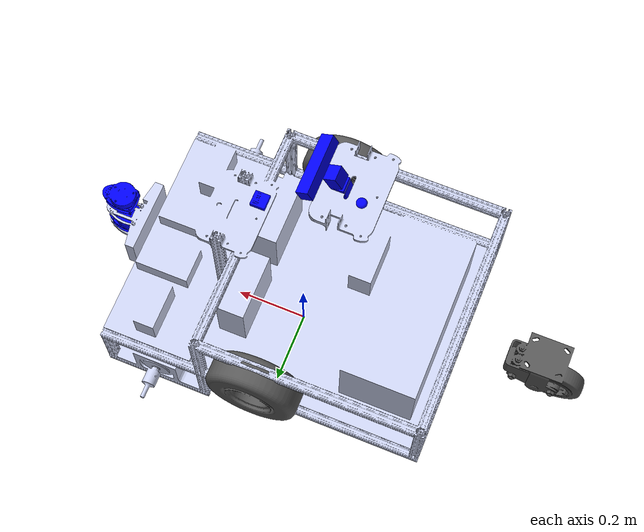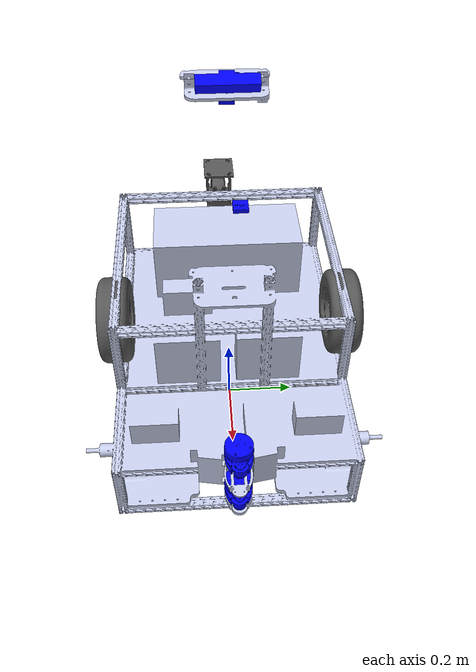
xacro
<?xml version="1.0" encoding="utf-8"?>
<robot name="espresso" xmlns:xacro="http://ros.org/wiki/xacro">

	<link name="base_link" />

	<!-- Includes -->
	<xacro:include filename="$(find description)/rover_model/urdf/plugins.gazebo.xacro"/>

	<!-- stand_link: origin for anything on the stand; located in the middle, on the top of the stand plate -->
	<xacro:include filename="$(find description)/rover_model/urdf/stand_link.urdf.xacro"/>

	<!-- wheels: associated to wheels that can be moved by a motor and the caster wheel -->
    <xacro:include filename="$(find description)/rover_model/urdf/wheels.urdf.xacro"/>

	<link name="chassis_link">
		<inertial>
			<origin xyz="-0.040859 0.00033673 -0.054592" rpy="0 0 0" />
			<mass value="40.135" />
			<inertia
				ixx="0.58726"
				ixy="1.3916E-05"
				ixz="8.6833E-05"
				iyy="0.27783"
				iyz="1.0234E-06"
				izz="0.67281" />
		</inertial>

		<visual>
			<origin xyz="0 0 0" rpy="0 0 0" />
			<geometry>
				<mesh filename="package://description/rover_model/meshes/chassis_link.STL" />
			</geometry>
			<material name="">
				<color rgba="0.79216 0.81961 0.93333 1" />
			</material>
		</visual>

		<collision>
			<origin xyz="0 0 0" rpy="0 0 0" />
			<geometry>
				<mesh filename="package://description/rover_model/meshes/chassis_link.STL" />
			</geometry>
		</collision>
	</link>

	<joint name="chassis_joint" type="fixed">
		<origin xyz="0 0 0.34041" rpy="0 0 0" />
		<parent link="base_link" />
		<child link="chassis_link" />
		<axis xyz="0 0 0" />
	</joint>

	<gazebo reference="chassis_link">
		<material>Gazebo/Grey</material>
	</gazebo>

	<!-- Upper LIDAR -->
	<link name="top_lidar_link">
		<inertial>
			<origin xyz="0.012061 -0.00053309 -0.018931" rpy="0 0 0" />
			<mass value="0.073082" />
			<inertia
				ixx="1.9579E-05"
				ixy="-1.0452E-07"
				ixz="-4.2823E-07"
				iyy="2.4126E-05"
				iyz="9.3469E-09"
				izz="4.1417E-05" />
		</inertial>

		<visual>
			<origin xyz="0 0 0" rpy="0 0 0" />
			<geometry>
				<mesh filename="package://description/rover_model/meshes/lidar_link.STL" />
			</geometry>
			<material name="">
				<color rgba="0 0 1 1" />
			</material>
		</visual>

		<collision>
			<origin xyz="0 0 0" rpy="0 0 0" />
			<geometry>
				<mesh filename="package://description/rover_model/meshes/lidar_link.STL" />
			</geometry>
		</collision>
	</link>

	<joint name="top_lidar_joint" type="fixed">
		<origin xyz="0.52049 -0.005698 ${distance_to_second_lidar - 0.069334}" rpy="0 0 0" />
		<!-- before z =  0.0056661 -->
		<parent link="chassis_link" />
		<child link="top_lidar_link" />
		<axis xyz="0 0 0" />
	</joint>

	<gazebo reference="top_lidar_link">
		<material>Gazebo/Blue</material>
	</gazebo>

	<!-- Lower LIDAR -->
	<link name="bottom_lidar_link">
		<inertial>
			<origin xyz="-0.044335 2.8732E-05 -0.021084" rpy="0 0 0" />
			<mass value="0.46918" />
			<inertia
				ixx="0.0018061"
				ixy="-1.363E-06"
				ixz="7.5472E-05"
				iyy="0.0004731"
				iyz="8.5341E-07"
				izz="0.001728" />
		</inertial>

		<visual>
			<origin xyz="0 0 0" rpy="0 0 0" />
			<geometry>
				<mesh filename="package://description/rover_model/meshes/lidar_link.STL" />
			</geometry>
			<material name="">
				<color rgba="0 0 1 1" />
			</material>
		</visual>

		<collision>
			<origin xyz="0 0 0" rpy="0 0 0" />
			<geometry>
				<mesh filename="package://description/rover_model/meshes/lidar_link.STL" />
			</geometry>
		</collision>
	</link>

	<joint name="bottom_lidar_joint" type="fixed">
		<origin xyz="0.52049 -0.005698 -0.069334" rpy="0 0 0" />
		<parent link="chassis_link" />
		<child link="bottom_lidar_link" />
		<axis xyz="0 0 0" />
	</joint>

	<gazebo reference="bottom_lidar_link">
		<material>Gazebo/Blue</material>
	</gazebo>

</robot>

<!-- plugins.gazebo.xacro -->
<robot name="plugins" xmlns:xacro="http://ros.org/wiki/xacro">

    <!-- Includes -->
    <xacro:include filename="$(find description)/rover_model/urdf/constants.xacro"/>

    <!-- Differential Drive Control Support -->
    <gazebo>
        <plugin name="espresso_drive_controller" filename="libgazebo_ros_diff_drive.so">
            <updateRate>${diff_drive_update_rate}</updateRate>
            <leftJoint>${wheel_left_joint}</leftJoint>
            <rightJoint>${wheel_right_joint}</rightJoint>
            <wheelSeparation>${wheels_separation}</wheelSeparation>
            <wheelDiameter>${wheel_diameter}</wheelDiameter>
            <wheelAcceleration>${wheel_acceleration}</wheelAcceleration>
            <wheelTorque>${wheel_torque}</wheelTorque>
            <commandTopic>${diff_drive_commandTopic}</commandTopic>
            <odometryTopic>${diff_drive_odometryTopic}</odometryTopic>
            <odometryFrame>${diff_drive_odometryFrame}</odometryFrame>
            <robotBaseFrame>${diff_drive_robotBaseFrame}</robotBaseFrame>
            <odometrySource>${diff_drive_odometrySource}</odometrySource>
            <publishWheelTF>${diff_drive_publishWheelTF}</publishWheelTF>
            <publishOdomTF>${diff_drive_publishOdomTF}</publishOdomTF>
            <publishTf>${diff_drive_publishTf}</publishTf>
            <publishWheelJointState>${diff_drive_publishWheelJointState}</publishWheelJointState>
            <legacyMode>${diff_drive_legacymode}</legacyMode>
            <rosDebugLevel>${diff_drive_rosDebugLevel}</rosDebugLevel>
        </plugin>
    </gazebo>

    <!-- Lets all the transmission tags be read -->
    <gazebo>
        <plugin name="gazebo_ros_control" filename="libgazebo_ros_control.so"/>
    </gazebo>

    <!-- LIDAR -->
    <gazebo reference="bottom_lidar_link">
        <!-- Make sure your sensor NAMES are unique -->
        <sensor type="ray" name="rplidar_sensor_1">
            <pose>0 0 0 0 0 0</pose>
            <visualize>${laser_visualize}</visualize>
            <update_rate>${laser_update_rate}</update_rate>
            <ray>
                <scan>
                    <horizontal>
                        <samples>${laser_horizontal_samples}</samples>
                        <resolution>${laser_horizontal_resolution}</resolution>
                        <min_angle>${laser_horizontal_min_angle}</min_angle>
                        <max_angle>${laser_horizontal_max_angle}</max_angle>
                    </horizontal>
                </scan>
                <range>
                    <min>${laser_range_min}</min>
                    <max>${laser_range_max}</max>
                    <resolution>${laser_range_resolution}</resolution>
                </range>
                <noise>
                    <type>${laser_noise_type}</type>
                    <mean>${laser_noise_mean}</mean>
                    <stddev>${laser_noise_stddev}</stddev>
                </noise>
            </ray>
            <plugin name="gazebo_ros_rplidar_controller" filename="libgazebo_ros_laser.so">
                <topicName>${bottom_laser_topicName}</topicName>
                <frameName>${bottom_laser_frameName}</frameName>
            </plugin>
        </sensor>
    </gazebo>

    <!-- Second Upper LIDAR -->
    <gazebo reference="top_lidar_link">
        <!-- make sure your sensor NAMES are unique :'( -->
        <sensor type="ray" name="rplidar_sensor_2">
            <pose>0 0 0 0 0 0</pose>
            <visualize>${laser_visualize}</visualize>
            <update_rate>${laser_update_rate}</update_rate>
            <ray>
                <scan>
                    <horizontal>
                        <samples>${laser_horizontal_samples}</samples>
                        <resolution>${laser_horizontal_resolution}</resolution>
                        <min_angle>${laser_horizontal_min_angle}</min_angle>
                        <max_angle>${laser_horizontal_max_angle}</max_angle>
                    </horizontal>
                </scan>
                <range>
                    <min>${laser_range_min}</min>
                    <max>${laser_range_max}</max>
                    <resolution>${laser_range_resolution}</resolution>
                </range>
                <noise>
                    <type>${laser_noise_type}</type>
                    <mean>${laser_noise_mean}</mean>
                    <stddev>${laser_noise_stddev}</stddev>
                </noise>
            </ray>
            <plugin name="gazebo_ros_rplidar_controller" filename="libgazebo_ros_laser.so">
                <topicName>${top_laser_topicName}</topicName>
                <frameName>${top_laser_frameName}</frameName>
            </plugin>
        </sensor>
    </gazebo>

    <!-- GPS -->
    <gazebo>
        <plugin name="gps_controller" filename="libhector_gazebo_ros_gps.so">
            <updateRate>${gps_update_rate}</updateRate>
            <bodyName>${gps_frame}</bodyName>
            <frameId>${gps_frame}</frameId>

            <topicName>${gps_topic}</topicName>
            <velocityTopicName>${gps_vel_topic}</velocityTopicName>

            <referenceLatitude>${ref_lat}</referenceLatitude>
            <referenceLongitude>${ref_lon}</referenceLongitude>
            <referenceAltitude>${ref_alt}</referenceAltitude>

            <drift>${gps_drift}</drift>
            <velocityDrift>${gps_vel_drift}</velocityDrift>
            <!-- TODO: add Gaussian noise based off Garmin GPS -->
        </plugin>
    </gazebo>

    <!-- Gazebo multicamera plugin -->
    <gazebo reference="left_camera_link">
        <sensor type="multicamera" name="stereo_camera">
            <update_rate>${ZED_image_refresh}</update_rate>
            <camera name="left">
            <horizontal_fov>${ZED_image_hfov}</horizontal_fov>
            <image>
                <width>${ZED_image_width}</width>
                <height>${ZED_image_height}</height>
                <format>${ZED_image_format}</format>
            </image>
            <clip>
                <near>0.02</near>
                <far>300</far>
            </clip>
            </camera>
            <camera name="right">
            <pose>0 -${ZED_stereo_offset} 0 0 0 0</pose>
            <horizontal_fov>${ZED_image_hfov}</horizontal_fov>
            <image>
                <width>${ZED_image_width}</width>
                <height>${ZED_image_height}</height>
                <format>${ZED_image_format}</format>
            </image>
            <clip>
                <near>0.02</near>
                <far>300</far>
            </clip>
            </camera>
            <plugin name="stereo_camera_controller" filename="libgazebo_ros_multicamera.so">
                <cameraName>${ZED_name}</cameraName>
                <alwaysOn>${ZED_always_on}</alwaysOn>
                <updateRate>${ZED_update_rate}</updateRate>
                <imageTopicName>${ZED_image_topicName}</imageTopicName>
                <cameraInfoTopicName>${ZED_image_info_topicName}</cameraInfoTopicName>
                <depthImageTopicName>${ZED_depth_topicName}</depthImageTopicName>
                <depthImageInfoTopicName>${ZED_depth_info_topicName}</depthImageInfoTopicName>
                <pointCloudTopicName>${ZED_depth_points_topicName}</pointCloudTopicName>
                <frameName>${ZED_frameName}</frameName>
                <hackBaseline>${ZED_camera_length}</hackBaseline>
                <!-- TODO: Get distortion parameters from real camera -->
                <distortionK1>0.0</distortionK1>
                <distortionK2>0.0</distortionK2>
                <distortionK3>0.0</distortionK3>
                <distortionT1>0.0</distortionT1>
                <distortionT2>0.0</distortionT2>
            </plugin>
        </sensor>
    </gazebo>

    <!-- IMU -->
    <gazebo reference="imu_link">
        <gravity>true</gravity>
        <sensor name="imu_sensor" type="imu">
            <always_on>true</always_on>
            <update_rate>${imu_update_rate}</update_rate>
            <topic>__default_topic__</topic>
            <!-- TODO: add Drift based on Phidget IMU -->

            <plugin filename="libgazebo_ros_imu_sensor.so" name="imu_plugin">
                <topicName>${imu_topic}</topicName>
                <bodyName>${imu_frame}</bodyName>
                <frameName>${imu_frame}</frameName>
                <updateRateHZ>${imu_update_rate}</updateRateHZ>
                <gaussianNoise>0.0</gaussianNoise>  <!-- TODO: set Gaussian noise based on Phidget IMU -->
                <xyzOffset>0 0 0</xyzOffset>
                <rpyOffset>0 0 0</rpyOffset>
                <initialOrientationAsReference>false</initialOrientationAsReference>
            </plugin>

            <pose>0 0 0 0 0 0</pose>
        </sensor>
    </gazebo>

    <!-- Ground Truth Plugin-->
    <gazebo>
        <plugin name="p3d_base_controller" filename="libgazebo_ros_p3d.so">
        <alwaysOn>true</alwaysOn>
        <updateRate>50.0</updateRate>
        <bodyName>base_link</bodyName>
        <topicName>ground_truth/state</topicName>
        <gaussianNoise>0.01</gaussianNoise>
        <frameName>world</frameName>
        <xyzOffsets>0 0 0</xyzOffsets>
        <rpyOffsets>0 0 0</rpyOffsets>
        </plugin>
    </gazebo>

</robot>

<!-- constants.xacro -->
<robot name="timbot_constants" xmlns:xacro="http://ros.org/wiki/xacro">

    <!-- Drivebase -->

    <!-- Chassis -->
    <xacro:property name="chassis_to_base_link_dist" value="0.34041"/>
    <xacro:property name="chassis_to_stand_link_z_dist" value="0.26861"/>
    <xacro:property name="chassis_to_stand_link_x_dist" value="0.178"/>

    <xacro:property name="chassis_link_mass" value="36.95"/>

    <!-- Stand -->

    <!-- Casters -->

    <!-- Wheels -->
    <!-- TODO: Update acceleration and torque parameters when known -->
    <xacro:property name="wheel_left_joint" value="left_wheel_joint"/>
    <xacro:property name="wheel_right_joint" value="right_wheel_joint"/>

    <xacro:property name="wheels_separation" value="0.6744"/>
    <xacro:property name="wheel_diameter" value="0.25"/>

    <xacro:property name="wheel_acceleration" value="5.0"/>
    <xacro:property name="wheel_torque" value="60"/>

    <xacro:property name="wheel_mass" value="3.533"/>

    <!-- Gazebo Motor -->
    <xacro:property name="diff_drive_update_rate" value="30.0"/>

    <xacro:property name="diff_drive_commandTopic" value="/cmd_vel"/>
    <xacro:property name="diff_drive_odometryTopic" value="/wheel_odom"/>

    <xacro:property name="diff_drive_odometryFrame" value="odom"/>
    <xacro:property name="diff_drive_robotBaseFrame" value="base_link"/>

    <xacro:property name="diff_drive_odometrySource" value="encoder"/>

    <xacro:property name="diff_drive_publishWheelTF" value="false"/>
    <xacro:property name="diff_drive_publishOdomTF" value="false"/>
    <xacro:property name="diff_drive_publishTf" value="true"/>
    <xacro:property name="diff_drive_publishWheelJointState" value="true"/>

    <xacro:property name="diff_drive_legacymode" value="false"/>
    <xacro:property name="diff_drive_rosDebugLevel" value="na"/>

    <!--RPlidar A1-->

    <xacro:property name="laser_visualize" value="false"/>
    <xacro:property name="laser_update_rate" value="10"/>

    <xacro:property name="laser_horizontal_resolution" value="1"/>
    <xacro:property name="laser_horizontal_samples" value="1080"/>
    <xacro:property name="laser_field_of_view" value="360"/>
    <xacro:property name="laser_horizontal_min_angle" value="${-0.5*laser_field_of_view*pi/180}"/>
    <xacro:property name="laser_horizontal_max_angle" value="${0.5*laser_field_of_view*pi/180}"/>

    <xacro:property name="laser_range_min" value="0.15"/>
    <xacro:property name="laser_range_max" value="8"/>
    <xacro:property name="laser_resolution_angle" value="0.36"/>
    <xacro:property name="laser_range_resolution" value="${laser_resolution_angle*pi/180}"/>

    <xacro:property name="laser_noise_type" value="gaussian"/>
    <xacro:property name="laser_noise_mean" value="0.0"/>
    <xacro:property name="laser_noise_stddev" value="0.01/3"/>

    <xacro:property name="bottom_laser_topicName" value="/scan_lower"/>
    <xacro:property name="bottom_laser_frameName" value="bottom_lidar_link"/>
    <xacro:property name="top_laser_topicName" value="/scan_upper"/>
    <xacro:property name="top_laser_frameName" value="top_lidar_link"/>

    <xacro:property name="distance_to_second_lidar" value="0.14"/>

    <!-- ZED camera -->
    <!-- NOTE: approx as a rectangular prism -->
    <xacro:property name="ZED_camera_mass" value="0.1587573"/>
    <xacro:property name="ZED_camera_length" value="0.175"/>
    <xacro:property name="ZED_camera_width" value="0.03"/>

    <xacro:property name="ZED_stereo_offset" value="0.12"/>
    <xacro:property name="ZED_camera_pitch" value="${27 * pi/180}"/>
    <!-- ZED image height/width corresponds to image size for 60Hz refresh-->
    <xacro:property name="ZED_image_refresh" value="5"/>
    <xacro:property name="ZED_image_width" value="320"/>
    <xacro:property name="ZED_image_height" value="180"/>
    <xacro:property name="ZED_image_format" value="R8G8B8"/>
    <xacro:property name="ZED_image_hfov" value="${110 * pi/180}"/>

    <xacro:property name="ZED_name" value="zed_node"/>
    <xacro:property name="ZED_always_on" value="true"/>
    <xacro:property name="ZED_update_rate" value="5"/>
    <xacro:property name="ZED_image_topicName" value="/image_raw_color"/>
    <xacro:property name="ZED_image_info_topicName" value="/camera_info"/>
    <xacro:property name="ZED_depth_topicName" value="/depth/image_raw"/>
    <xacro:property name="ZED_depth_info_topicName" value="/depth/camera_info"/>
    <xacro:property name="ZED_depth_points_topicName" value="/depth/points"/>
    <xacro:property name="ZED_frameName" value="left_camera_link_optical"/>

    <!--ZED CAMERA JOINT PARAMETERS-->

    <xacro:property name="ZED_camera_to_top_plate_x" value="${(stand_width / 2.0)-0.01}"/>
    <xacro:property name="ZED_camera_to_top_plate_z" value="0.10098"/>

    <!-- Garmin GPS -->
    <!-- NOTE: approx. as a cylinder, Garmin itself is similar to a hockey puck -->
    <xacro:property name="gps_frame" value="gps_link"/>
    <xacro:property name="gps_topic" value="/gps/fix"/>
    <xacro:property name="gps_vel_topic" value="/gps/fix_velocity"/>
    <xacro:property name="gps_update_rate" value="5.0"/>

    <!-- NOTE: GPS coordinates for UofT St. George Campus -->
    <xacro:property name="ref_lat" value="43.6570"/>
    <xacro:property name="ref_lon" value="-79.3903"/>
    <xacro:property name="ref_alt" value="76.0000"/>

    <xacro:property name="gps_drift" value="0 0 0"/>
    <xacro:property name="gps_vel_drift" value="0.00 0.00 0.00"/>

    <!-- Phidget IMU -->
    <xacro:property name="imu_frame" value="imu_link"/>
    <xacro:property name="imu_topic" value="/imu/data"/>
    <xacro:property name="imu_update_rate" value="128.0"/>

    <xacro:property name="imu_x_dist_to_stand" value="-0.018653"/>
    <xacro:property name="imu_y_dist_to_stand" value="-0.001408"/>
    <xacro:property name="imu_z_dist_to_stand" value="0.009525"/>

</robot>

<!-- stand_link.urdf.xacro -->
<robot name="stand_link" xmlns:xacro="http://ros.org/wiki/xacro">

    <!-- Includes -->
    <xacro:include filename="$(find description)/rover_model/urdf/constants.xacro"/>

    <link name="stand_link">
        <inertial>
            <origin xyz="0.000229157903262472 0.0038685225549956 0.00576901453025613" rpy="0 0 0" />
            <mass value="0.230738007647473" />
            <inertia
                ixx="0.0007751891369661"
                ixy="1.42155279926012E-07"
                ixz="-1.93289911661184E-06"
                iyy="0.000429374438189671"
                iyz="1.9215645736234E-08"
                izz="0.00119774793119647" />
        </inertial>

        <visual>
            <origin xyz="0 0 0" rpy="0 0 0" />
            <geometry>
                <mesh filename="package://description/rover_model/meshes/stand_link.STL" />
            </geometry>
            <material name="">
                <color rgba="0.792156862745098 0.819607843137255 0.933333333333333 1" />
            </material>
        </visual>

        <collision>
            <origin xyz="0 0 0" rpy="0 0 0" />
            <geometry>
                <mesh filename="package://description/rover_model/meshes/stand_link.STL" />
            </geometry>
        </collision>
    </link>

    <joint name="stand_joint" type="fixed">
        <origin xyz="-0.1268 0 0.6548" rpy="0 0 0" />
        <parent link="chassis_link" />
        <child link="stand_link" />
        <axis xyz="0 0 0" />
    </joint>

    <gazebo reference="stand_link">
        <material>Gazebo/Grey</material>
    </gazebo>

    <!-- ZED Camera -->
    <!-- NOTE: this frame is for convenience, multicamera will use the subsequent left camera frames -->
    <link name="zed_link">
        <inertial>
            <origin xyz="0.015551 -5.9022E-12 -0.00052325" rpy="0 0 0" />
            <mass value="0.15372" />
            <inertia
                ixx="0.00037683"
                ixy="5.4859E-14"
                ixz="7.1076E-08"
                iyy="2.3081E-05"
                iyz="1.2981E-12"
                izz="0.00037897" />
        </inertial>

        <visual>
            <origin xyz="0 0 0" rpy="0 0 0" />
            <geometry>
                <mesh filename="package://description/rover_model/meshes/zed_link.STL" />
            </geometry>
            <material name="">
                <color rgba="0 0 1 1" />
            </material>
        </visual>

        <collision>
            <origin xyz="0 0 0" rpy="0 0 0" />
            <geometry>
                <mesh filename="package://description/rover_model/meshes/zed_link.STL" />
            </geometry>
        </collision>
    </link>

    <joint name="zed_joint" type="fixed">
        <origin xyz="0.0736 0 0.06" rpy="0 ${ZED_camera_pitch} 0" />
        <parent link="stand_link" />
        <child link="zed_link" />
        <axis xyz="0 0 0" />
    </joint>

    <gazebo reference="zed_link">
        <material>Gazebo/Blue</material>
    </gazebo>

    <!-- Generate Left Camera frame -->
    <!-- NOTE: Specify frame of left camera (lens) because right one is specified relative to it by the multicamera plugin -->
    <link name="left_camera_link"/>

    <joint name="left_camera_joint" type="fixed">
        <parent link="zed_link"/>
        <child link="left_camera_link"/>
        <origin xyz="0.00001 ${ZED_stereo_offset / 2.0} 0" rpy="0 0 0"/>
    </joint>

    <!-- Generate an optical frame http://www.ros.org/reps/rep-0103.html#suffix-frames so that ros and opencv can operate on the camera frame correctly -->
    <link name="left_camera_link_optical"/>

    <joint name="left_camera_link_optical_joint" type="fixed">
        <parent link="left_camera_link"/>
        <child link="left_camera_link_optical"/>
        <origin xyz="0 0 0" rpy="${-pi/2} 0 ${-pi/2}"/>
    </joint>

    <!-- IMU -->
    <!-- Due to the requirements of cartographer, the imu_link frame is located on same height as base_link, but the model is located on top of the stand -->
    <link name="imu_link">
        <inertial>
            <origin xyz="3.0642E-07 -2.658E-07 0.0062442" rpy="0 0 0" />
            <mass value="0.016518" />
            <inertia
                ixx="1.9791E-06"
                ixy="-5.5078E-12"
                ixz="-2.4742E-11"
                iyy="2.0783E-06"
                iyz="2.5252E-11"
                izz="3.6277E-06" />
        </inertial>

        <visual>
            <origin xyz="0 0 0" rpy="0 0 0" /> <!-- Physical imu located on stand -->
            <!-- z-pos of visual model moved back up to stand height
                 z: imu_z_dist_to_stand + chassis_to_stand_link_z_dist + chassis_to_base_link_dist} -->
            <geometry>
                <mesh filename="package://description/rover_model/meshes/imu_link.STL" />
            </geometry>
            <material name="">
                <color rgba="0 0 1 1" />
            </material>
        </visual>

        <collision>
            <origin xyz="0 0 0" rpy="0 0 0" />
            <geometry>
                <mesh filename="package://description/rover_model/meshes/imu_link.STL" />
            </geometry>
        </collision>
    </link>

    <joint name="imu_joint" type="fixed">
        <origin xyz="0.0969 0.0229 0" rpy="0 0 0" />
        <!-- The x-pos is same as it's actual position on the stand, but z-pos same as base_link
             x: imu_x_dist_to_stand + chassis_to_stand_link_x_dist -->
        <parent link="base_link" /> <!-- The frame origin is centered on base_link -->
        <child link="imu_link" />
        <axis xyz="0 0 0" />
    </joint>

    <gazebo reference="imu_link">
        <material>Gazebo/Blue</material>
    </gazebo>

    <!-- GPS -->
    <link name="gps_link">
        <inertial>
            <origin xyz="6.6071E-09 -4.3415E-07 0.0051035" rpy="0 0 0" />
            <mass value="0.0040365" />
            <inertia
                ixx="1.6183E-07"
                ixy="1.7388E-12"
                ixz="-1.2753E-12"
                iyy="1.6176E-07"
                iyz="-9.0374E-15"
                izz="2.6794E-07" />
        </inertial>

        <visual>
            <origin xyz="0 0 0" rpy="0 0 0" />
            <geometry>
                <mesh filename="package://description/rover_model/meshes/gps_link.STL" />
            </geometry>
            <material name="">
                <color rgba="0 0 1 1" />
            </material>
        </visual>

        <collision>
            <origin xyz="0 0 0" rpy="0 0 0" />
            <geometry>
                <mesh filename="package://description/rover_model/meshes/gps_link.STL" />
            </geometry>
        </collision>
    </link>

    <joint name="gps_joint" type="fixed">
        <origin xyz="-0.0288 0.0274 0.0095015" rpy="0 0 0" />
        <parent link="stand_link" />
        <child link="gps_link" />
        <axis xyz="0 0 1" />
    </joint>

    <gazebo reference="gps_link">
        <material>Gazebo/Blue</material>
    </gazebo>

</robot>

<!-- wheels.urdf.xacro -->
<robot name="wheels" xmlns:xacro="http://ros.org/wiki/xacro">

    <!-- Motor Transmissions (for left+right wheels) -->
    <xacro:macro name="Transmission" params="joint">
        <transmission name="trans_${joint}">
            <type>transmission_interface/SimpleTransmission</type>
            <joint name="${joint}">
                <hardwareInterface>hardware_interface/EffortJointInterface</hardwareInterface>
            </joint>
            <actuator name="${joint}_motor"/>
        </transmission>
    </xacro:macro>

    <!-- Left Wheel -->
    <link name="left_wheel_link">
        <inertial>
            <origin xyz="-8.2128E-11 0 9.544E-08" rpy="0 0 0" />
            <mass value="3.533" />
            <inertia
                ixx="0.017314"
                ixy="-5.4493E-20"
                ixz="3.6017E-11"
                iyy="0.030562"
                iyz="1.8924E-18"
                izz="0.017314" />
        </inertial>

        <visual>
            <origin xyz="0 0 0" rpy="0 0 0" />
            <geometry>
                <mesh filename="package://description/rover_model/meshes/left_wheel_link.STL" />
            </geometry>
            <material name="">
                <color rgba="0.34118 0.34118 0.34118 1" />
            </material>
        </visual>

        <collision>
            <origin xyz="0 0 0" rpy="1.5707 0 0" /> <geometry>
                <cylinder length="0.1" radius="0.125"/>
            </geometry>
        </collision>
    </link>

    <joint name="left_wheel_joint" type="continuous">
        <origin xyz="0 0.337221649344587 0" rpy="0 0 0" />
        <parent link="chassis_link" />
        <child link="left_wheel_link" />
        <axis xyz="0 -1 0" />

        <limit effort="100.0" velocity="20.0"/>
    </joint>

    <gazebo reference="left_wheel_link">
        <material>Gazebo/Black</material>
        <mu1 value="100.0"/>
        <mu2 value="100.0"/>
        <kp value="10000000.0" />
        <kd value="1.0" />
    </gazebo>

    <xacro:Transmission joint="left_wheel_joint"/>

    <!-- Right Wheel -->
    <link name="right_wheel_link">
        <inertial>
            <origin xyz="0 0 0" rpy="0 0 0" />
            <mass value="3.533" />
            <inertia
                ixx="0.017314"
                ixy="-5.2822E-19"
                ixz="-3.6017E-11"
                iyy="0.030562"
                iyz="-4.3099E-19"
                izz="0.017314" />
        </inertial>

        <visual>
            <origin xyz="0 0 0" rpy="0 0 0" />
            <geometry>
                <mesh filename="package://description/rover_model/meshes/right_wheel_link.STL" />
            </geometry>
            <material name="">
                <color rgba="0.34118 0.34118 0.34118 1" />
            </material>
        </visual>

        <collision>
            <origin xyz="0 0 0" rpy="1.5707 0 0" /> <geometry>
                <cylinder length="0.1" radius="0.125"/>
            </geometry>
        </collision>
    </link>

    <joint name="right_wheel_joint" type="continuous">
        <origin xyz="0 -0.337221649344586 0" rpy="0 0 0" />
        <parent link="chassis_link" />
        <child link="right_wheel_link" />
        <axis xyz="0 -1 0" />

        <limit effort="100.0" velocity="20.0"/>
    </joint>

    <gazebo reference="right_wheel_link">
        <material>Gazebo/Black</material>
        <mu1 value="100.0"/>
        <mu2 value="100.0"/>
        <kp value="10000000.0" />
        <kd value="1.0" />
    </gazebo>

    <xacro:Transmission joint="right_wheel_joint"/>

    <!-- Caster Wheel -->
    <link name="caster_link">
        <inertial>
            <origin xyz="-0.02078 3.2838E-05 -0.11441" rpy="0 0 0" />
            <mass value="1.0439" />
            <inertia
                ixx="0.0025162"
                ixy="2.4976E-07"
                ixz="8.7516E-05"
                iyy="0.0036508"
                iyz="2.0109E-06"
                izz="0.0021048" />
        </inertial>

        <visual>
            <origin xyz="0 0 0" rpy="0 0 0" />
            <geometry>
                <mesh filename="package://description/rover_model/meshes/caster_link.STL" />
            </geometry>
            <material name="">
                <color rgba="0.34118 0.34118 0.34118 1" />
            </material>
        </visual>

        <collision>
            <origin xyz="0 0 0" rpy="0 0 0" />
            <geometry>
                <mesh filename="package://description/rover_model/meshes/caster_link.STL" />
            </geometry>
        </collision>
    </link>

    <joint name="caster_joint" type="fixed">
        <origin xyz="-0.67301 7.5398E-05 0.070217" rpy="0 0 0" />
        <parent link="chassis_link" />
        <child link="caster_link" />
        <axis xyz="0 0 0" />
    </joint>

    <gazebo reference="caster_link">
        <material>Gazebo/Black</material>
        <mu1 value="100.0"/>
        <mu2 value="100.0"/>
        <kp value="10000000.0" />
        <kd value="1.0" />
    </gazebo>

</robot>
